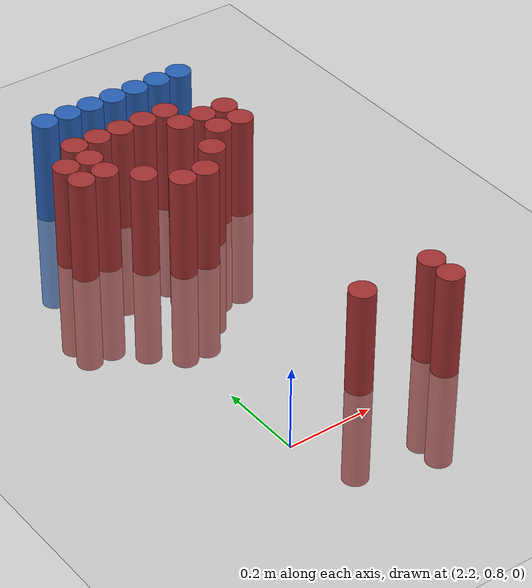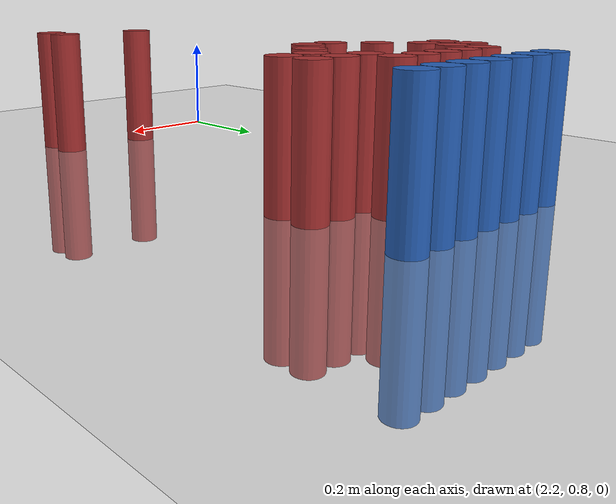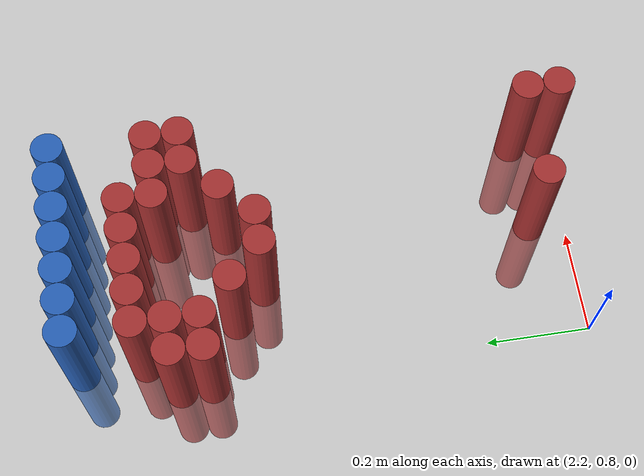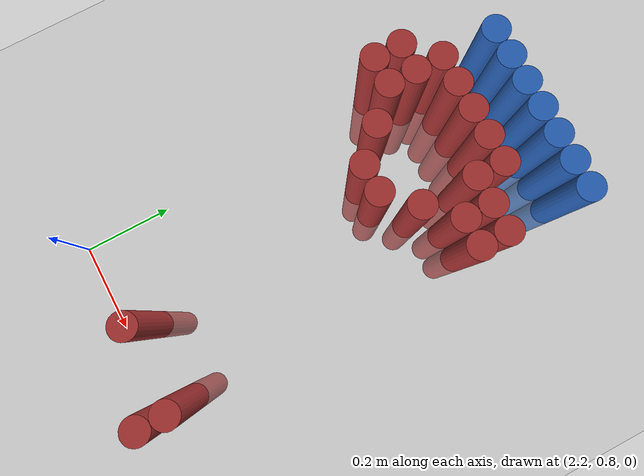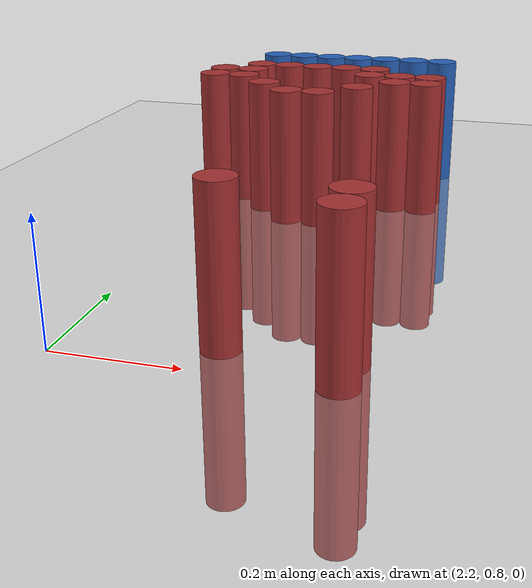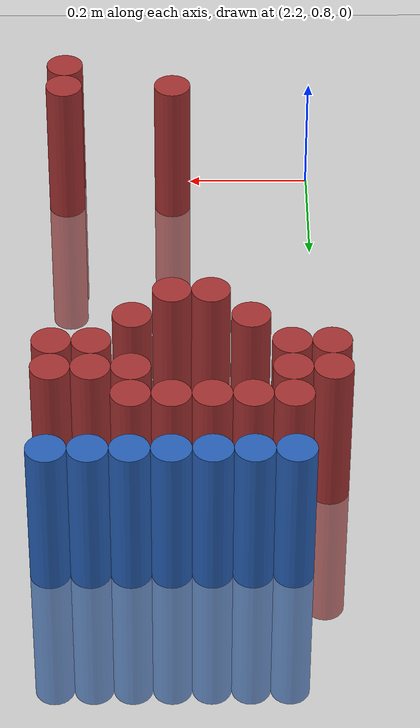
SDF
<sdf version="1.6">
 <world name="default">
  <model name="ground_plane">
   <static>1</static>
   <link name="link">
    <collision name="collision">
     <geometry><plane><normal>0 0 1</normal><size>100 100</size></plane></geometry>
     <surface><friction><ode><mu>100</mu><mu2>50</mu2></ode></friction></surface>
    </collision>
    <visual name="visual">
     <cast_shadows>0</cast_shadows>
     <geometry><plane><normal>0 0 1</normal><size>100 100</size></plane></geometry>
     <material>
      <script><uri>file://media/materials/scripts/gazebo.material</uri><name>Gazebo/Grey</name></script>
     </material>
    </visual>
   </link>
  </model>
  <model name="unit_cylinder_98">
   <static>1</static>
   <pose>2.250000 1.770000 0.000000 0.000000 0.000000 0.000000</pose>
   <link name="link">
    <inertial>
     <mass>1</mass>
     <inertia><ixx>0.145833</ixx><ixy>0</ixy><ixz>0</ixz><iyy>0.145833</iyy><iyz>0</iyz><izz>0.125</izz></inertia>
    </inertial>
    <collision name="collision">
     <geometry><cylinder><radius>0.030000</radius><length>0.5</length></cylinder></geometry>
    </collision>
    <visual name="visual">
     <geometry><cylinder><radius>0.030000</radius><length>0.5</length></cylinder></geometry>
     <material>
      <ambient>0.152000 0.379000 0.720000 1</ambient>
      <diffuse>0.152000 0.379000 0.720000 1</diffuse>
     </material>
     <material>
      <script><name>Gazebo/Grey</name><uri>file://media/materials/scripts/gazebo.material</uri></script>
     </material>
    </visual>
   </link>
  </model>
  <model name="unit_cylinder_99">
   <static>1</static>
   <pose>2.310000 1.770000 0.000000 0.000000 0.000000 0.000000</pose>
   <link name="link">
    <inertial>
     <mass>1</mass>
     <inertia><ixx>0.145833</ixx><ixy>0</ixy><ixz>0</ixz><iyy>0.145833</iyy><iyz>0</iyz><izz>0.125</izz></inertia>
    </inertial>
    <collision name="collision">
     <geometry><cylinder><radius>0.030000</radius><length>0.5</length></cylinder></geometry>
    </collision>
    <visual name="visual">
     <geometry><cylinder><radius>0.030000</radius><length>0.5</length></cylinder></geometry>
     <material>
      <ambient>0.152000 0.379000 0.720000 1</ambient>
      <diffuse>0.152000 0.379000 0.720000 1</diffuse>
     </material>
     <material>
      <script><name>Gazebo/Grey</name><uri>file://media/materials/scripts/gazebo.material</uri></script>
     </material>
    </visual>
   </link>
  </model>
  <model name="unit_cylinder_100">
   <static>1</static>
   <pose>2.370000 1.770000 0.000000 0.000000 0.000000 0.000000</pose>
   <link name="link">
    <inertial>
     <mass>1</mass>
     <inertia><ixx>0.145833</ixx><ixy>0</ixy><ixz>0</ixz><iyy>0.145833</iyy><iyz>0</iyz><izz>0.125</izz></inertia>
    </inertial>
    <collision name="collision">
     <geometry><cylinder><radius>0.030000</radius><length>0.5</length></cylinder></geometry>
    </collision>
    <visual name="visual">
     <geometry><cylinder><radius>0.030000</radius><length>0.5</length></cylinder></geometry>
     <material>
      <ambient>0.152000 0.379000 0.720000 1</ambient>
      <diffuse>0.152000 0.379000 0.720000 1</diffuse>
     </material>
     <material>
      <script><name>Gazebo/Grey</name><uri>file://media/materials/scripts/gazebo.material</uri></script>
     </material>
    </visual>
   </link>
  </model>
  <model name="unit_cylinder_101">
   <static>1</static>
   <pose>2.430000 1.770000 0.000000 0.000000 0.000000 0.000000</pose>
   <link name="link">
    <inertial>
     <mass>1</mass>
     <inertia><ixx>0.145833</ixx><ixy>0</ixy><ixz>0</ixz><iyy>0.145833</iyy><iyz>0</iyz><izz>0.125</izz></inertia>
    </inertial>
    <collision name="collision">
     <geometry><cylinder><radius>0.030000</radius><length>0.5</length></cylinder></geometry>
    </collision>
    <visual name="visual">
     <geometry><cylinder><radius>0.030000</radius><length>0.5</length></cylinder></geometry>
     <material>
      <ambient>0.152000 0.379000 0.720000 1</ambient>
      <diffuse>0.152000 0.379000 0.720000 1</diffuse>
     </material>
     <material>
      <script><name>Gazebo/Grey</name><uri>file://media/materials/scripts/gazebo.material</uri></script>
     </material>
    </visual>
   </link>
  </model>
  <model name="unit_cylinder_102">
   <static>1</static>
   <pose>2.490000 1.770000 0.000000 0.000000 0.000000 0.000000</pose>
   <link name="link">
    <inertial>
     <mass>1</mass>
     <inertia><ixx>0.145833</ixx><ixy>0</ixy><ixz>0</ixz><iyy>0.145833</iyy><iyz>0</iyz><izz>0.125</izz></inertia>
    </inertial>
    <collision name="collision">
     <geometry><cylinder><radius>0.030000</radius><length>0.5</length></cylinder></geometry>
    </collision>
    <visual name="visual">
     <geometry><cylinder><radius>0.030000</radius><length>0.5</length></cylinder></geometry>
     <material>
      <ambient>0.152000 0.379000 0.720000 1</ambient>
      <diffuse>0.152000 0.379000 0.720000 1</diffuse>
     </material>
     <material>
      <script><name>Gazebo/Grey</name><uri>file://media/materials/scripts/gazebo.material</uri></script>
     </material>
    </visual>
   </link>
  </model>
  <model name="unit_cylinder_103">
   <static>1</static>
   <pose>2.550000 1.770000 0.000000 0.000000 0.000000 0.000000</pose>
   <link name="link">
    <inertial>
     <mass>1</mass>
     <inertia><ixx>0.145833</ixx><ixy>0</ixy><ixz>0</ixz><iyy>0.145833</iyy><iyz>0</iyz><izz>0.125</izz></inertia>
    </inertial>
    <collision name="collision">
     <geometry><cylinder><radius>0.030000</radius><length>0.5</length></cylinder></geometry>
    </collision>
    <visual name="visual">
     <geometry><cylinder><radius>0.030000</radius><length>0.5</length></cylinder></geometry>
     <material>
      <ambient>0.152000 0.379000 0.720000 1</ambient>
      <diffuse>0.152000 0.379000 0.720000 1</diffuse>
     </material>
     <material>
      <script><name>Gazebo/Grey</name><uri>file://media/materials/scripts/gazebo.material</uri></script>
     </material>
    </visual>
   </link>
  </model>
  <model name="unit_cylinder_104">
   <static>1</static>
   <pose>2.610000 1.770000 0.000000 0.000000 0.000000 0.000000</pose>
   <link name="link">
    <inertial>
     <mass>1</mass>
     <inertia><ixx>0.145833</ixx><ixy>0</ixy><ixz>0</ixz><iyy>0.145833</iyy><iyz>0</iyz><izz>0.125</izz></inertia>
    </inertial>
    <collision name="collision">
     <geometry><cylinder><radius>0.030000</radius><length>0.5</length></cylinder></geometry>
    </collision>
    <visual name="visual">
     <geometry><cylinder><radius>0.030000</radius><length>0.5</length></cylinder></geometry>
     <material>
      <ambient>0.152000 0.379000 0.720000 1</ambient>
      <diffuse>0.152000 0.379000 0.720000 1</diffuse>
     </material>
     <material>
      <script><name>Gazebo/Grey</name><uri>file://media/materials/scripts/gazebo.material</uri></script>
     </material>
    </visual>
   </link>
  </model>
  <model name="unit_cylinder_137">
   <static>1</static>
   <pose>2.250000 1.650000 0.000000 0.000000 0.000000 0.000000</pose>
   <link name="link">
    <inertial>
     <mass>1</mass>
     <inertia><ixx>0.145833</ixx><ixy>0</ixy><ixz>0</ixz><iyy>0.145833</iyy><iyz>0</iyz><izz>0.125</izz></inertia>
    </inertial>
    <collision name="collision">
     <geometry><cylinder><radius>0.030000</radius><length>0.5</length></cylinder></geometry>
    </collision>
    <visual name="visual">
     <geometry><cylinder><radius>0.030000</radius><length>0.5</length></cylinder></geometry>
     <material>
      <ambient>0.648000 0.192000 0.192000 1</ambient>
      <diffuse>0.648000 0.192000 0.192000 1</diffuse>
     </material>
     <material>
      <script><name>Gazebo/Grey</name><uri>file://media/materials/scripts/gazebo.material</uri></script>
     </material>
    </visual>
   </link>
  </model>
  <model name="unit_cylinder_138">
   <static>1</static>
   <pose>2.310000 1.650000 0.000000 0.000000 0.000000 0.000000</pose>
   <link name="link">
    <inertial>
     <mass>1</mass>
     <inertia><ixx>0.145833</ixx><ixy>0</ixy><ixz>0</ixz><iyy>0.145833</iyy><iyz>0</iyz><izz>0.125</izz></inertia>
    </inertial>
    <collision name="collision">
     <geometry><cylinder><radius>0.030000</radius><length>0.5</length></cylinder></geometry>
    </collision>
    <visual name="visual">
     <geometry><cylinder><radius>0.030000</radius><length>0.5</length></cylinder></geometry>
     <material>
      <ambient>0.648000 0.192000 0.192000 1</ambient>
      <diffuse>0.648000 0.192000 0.192000 1</diffuse>
     </material>
     <material>
      <script><name>Gazebo/Grey</name><uri>file://media/materials/scripts/gazebo.material</uri></script>
     </material>
    </visual>
   </link>
  </model>
  <model name="unit_cylinder_139">
   <static>1</static>
   <pose>2.370000 1.650000 0.000000 0.000000 0.000000 0.000000</pose>
   <link name="link">
    <inertial>
     <mass>1</mass>
     <inertia><ixx>0.145833</ixx><ixy>0</ixy><ixz>0</ixz><iyy>0.145833</iyy><iyz>0</iyz><izz>0.125</izz></inertia>
    </inertial>
    <collision name="collision">
     <geometry><cylinder><radius>0.030000</radius><length>0.5</length></cylinder></geometry>
    </collision>
    <visual name="visual">
     <geometry><cylinder><radius>0.030000</radius><length>0.5</length></cylinder></geometry>
     <material>
      <ambient>0.648000 0.192000 0.192000 1</ambient>
      <diffuse>0.648000 0.192000 0.192000 1</diffuse>
     </material>
     <material>
      <script><name>Gazebo/Grey</name><uri>file://media/materials/scripts/gazebo.material</uri></script>
     </material>
    </visual>
   </link>
  </model>
  <model name="unit_cylinder_140">
   <static>1</static>
   <pose>2.430000 1.650000 0.000000 0.000000 0.000000 0.000000</pose>
   <link name="link">
    <inertial>
     <mass>1</mass>
     <inertia><ixx>0.145833</ixx><ixy>0</ixy><ixz>0</ixz><iyy>0.145833</iyy><iyz>0</iyz><izz>0.125</izz></inertia>
    </inertial>
    <collision name="collision">
     <geometry><cylinder><radius>0.030000</radius><length>0.5</length></cylinder></geometry>
    </collision>
    <visual name="visual">
     <geometry><cylinder><radius>0.030000</radius><length>0.5</length></cylinder></geometry>
     <material>
      <ambient>0.648000 0.192000 0.192000 1</ambient>
      <diffuse>0.648000 0.192000 0.192000 1</diffuse>
     </material>
     <material>
      <script><name>Gazebo/Grey</name><uri>file://media/materials/scripts/gazebo.material</uri></script>
     </material>
    </visual>
   </link>
  </model>
  <model name="unit_cylinder_141">
   <static>1</static>
   <pose>2.490000 1.650000 0.000000 0.000000 0.000000 0.000000</pose>
   <link name="link">
    <inertial>
     <mass>1</mass>
     <inertia><ixx>0.145833</ixx><ixy>0</ixy><ixz>0</ixz><iyy>0.145833</iyy><iyz>0</iyz><izz>0.125</izz></inertia>
    </inertial>
    <collision name="collision">
     <geometry><cylinder><radius>0.030000</radius><length>0.5</length></cylinder></geometry>
    </collision>
    <visual name="visual">
     <geometry><cylinder><radius>0.030000</radius><length>0.5</length></cylinder></geometry>
     <material>
      <ambient>0.648000 0.192000 0.192000 1</ambient>
      <diffuse>0.648000 0.192000 0.192000 1</diffuse>
     </material>
     <material>
      <script><name>Gazebo/Grey</name><uri>file://media/materials/scripts/gazebo.material</uri></script>
     </material>
    </visual>
   </link>
  </model>
  <model name="unit_cylinder_151">
   <static>1</static>
   <pose>2.190000 1.590000 0.000000 0.000000 0.000000 0.000000</pose>
   <link name="link">
    <inertial>
     <mass>1</mass>
     <inertia><ixx>0.145833</ixx><ixy>0</ixy><ixz>0</ixz><iyy>0.145833</iyy><iyz>0</iyz><izz>0.125</izz></inertia>
    </inertial>
    <collision name="collision">
     <geometry><cylinder><radius>0.030000</radius><length>0.5</length></cylinder></geometry>
    </collision>
    <visual name="visual">
     <geometry><cylinder><radius>0.030000</radius><length>0.5</length></cylinder></geometry>
     <material>
      <ambient>0.648000 0.192000 0.192000 1</ambient>
      <diffuse>0.648000 0.192000 0.192000 1</diffuse>
     </material>
     <material>
      <script><name>Gazebo/Grey</name><uri>file://media/materials/scripts/gazebo.material</uri></script>
     </material>
    </visual>
   </link>
  </model>
  <model name="unit_cylinder_152">
   <static>1</static>
   <pose>2.250000 1.590000 0.000000 0.000000 0.000000 0.000000</pose>
   <link name="link">
    <inertial>
     <mass>1</mass>
     <inertia><ixx>0.145833</ixx><ixy>0</ixy><ixz>0</ixz><iyy>0.145833</iyy><iyz>0</iyz><izz>0.125</izz></inertia>
    </inertial>
    <collision name="collision">
     <geometry><cylinder><radius>0.030000</radius><length>0.5</length></cylinder></geometry>
    </collision>
    <visual name="visual">
     <geometry><cylinder><radius>0.030000</radius><length>0.5</length></cylinder></geometry>
     <material>
      <ambient>0.648000 0.192000 0.192000 1</ambient>
      <diffuse>0.648000 0.192000 0.192000 1</diffuse>
     </material>
     <material>
      <script><name>Gazebo/Grey</name><uri>file://media/materials/scripts/gazebo.material</uri></script>
     </material>
    </visual>
   </link>
  </model>
  <model name="unit_cylinder_153">
   <static>1</static>
   <pose>2.490000 1.590000 0.000000 0.000000 0.000000 0.000000</pose>
   <link name="link">
    <inertial>
     <mass>1</mass>
     <inertia><ixx>0.145833</ixx><ixy>0</ixy><ixz>0</ixz><iyy>0.145833</iyy><iyz>0</iyz><izz>0.125</izz></inertia>
    </inertial>
    <collision name="collision">
     <geometry><cylinder><radius>0.030000</radius><length>0.5</length></cylinder></geometry>
    </collision>
    <visual name="visual">
     <geometry><cylinder><radius>0.030000</radius><length>0.5</length></cylinder></geometry>
     <material>
      <ambient>0.648000 0.192000 0.192000 1</ambient>
      <diffuse>0.648000 0.192000 0.192000 1</diffuse>
     </material>
     <material>
      <script><name>Gazebo/Grey</name><uri>file://media/materials/scripts/gazebo.material</uri></script>
     </material>
    </visual>
   </link>
  </model>
  <model name="unit_cylinder_154">
   <static>1</static>
   <pose>2.550000 1.590000 0.000000 0.000000 0.000000 0.000000</pose>
   <link name="link">
    <inertial>
     <mass>1</mass>
     <inertia><ixx>0.145833</ixx><ixy>0</ixy><ixz>0</ixz><iyy>0.145833</iyy><iyz>0</iyz><izz>0.125</izz></inertia>
    </inertial>
    <collision name="collision">
     <geometry><cylinder><radius>0.030000</radius><length>0.5</length></cylinder></geometry>
    </collision>
    <visual name="visual">
     <geometry><cylinder><radius>0.030000</radius><length>0.5</length></cylinder></geometry>
     <material>
      <ambient>0.648000 0.192000 0.192000 1</ambient>
      <diffuse>0.648000 0.192000 0.192000 1</diffuse>
     </material>
     <material>
      <script><name>Gazebo/Grey</name><uri>file://media/materials/scripts/gazebo.material</uri></script>
     </material>
    </visual>
   </link>
  </model>
  <model name="unit_cylinder_155">
   <static>1</static>
   <pose>2.610000 1.590000 0.000000 0.000000 0.000000 0.000000</pose>
   <link name="link">
    <inertial>
     <mass>1</mass>
     <inertia><ixx>0.145833</ixx><ixy>0</ixy><ixz>0</ixz><iyy>0.145833</iyy><iyz>0</iyz><izz>0.125</izz></inertia>
    </inertial>
    <collision name="collision">
     <geometry><cylinder><radius>0.030000</radius><length>0.5</length></cylinder></geometry>
    </collision>
    <visual name="visual">
     <geometry><cylinder><radius>0.030000</radius><length>0.5</length></cylinder></geometry>
     <material>
      <ambient>0.648000 0.192000 0.192000 1</ambient>
      <diffuse>0.648000 0.192000 0.192000 1</diffuse>
     </material>
     <material>
      <script><name>Gazebo/Grey</name><uri>file://media/materials/scripts/gazebo.material</uri></script>
     </material>
    </visual>
   </link>
  </model>
  <model name="unit_cylinder_160">
   <static>1</static>
   <pose>2.190000 1.530000 0.000000 0.000000 0.000000 0.000000</pose>
   <link name="link">
    <inertial>
     <mass>1</mass>
     <inertia><ixx>0.145833</ixx><ixy>0</ixy><ixz>0</ixz><iyy>0.145833</iyy><iyz>0</iyz><izz>0.125</izz></inertia>
    </inertial>
    <collision name="collision">
     <geometry><cylinder><radius>0.030000</radius><length>0.5</length></cylinder></geometry>
    </collision>
    <visual name="visual">
     <geometry><cylinder><radius>0.030000</radius><length>0.5</length></cylinder></geometry>
     <material>
      <ambient>0.648000 0.192000 0.192000 1</ambient>
      <diffuse>0.648000 0.192000 0.192000 1</diffuse>
     </material>
     <material>
      <script><name>Gazebo/Grey</name><uri>file://media/materials/scripts/gazebo.material</uri></script>
     </material>
    </visual>
   </link>
  </model>
  <model name="unit_cylinder_161">
   <static>1</static>
   <pose>2.250000 1.530000 0.000000 0.000000 0.000000 0.000000</pose>
   <link name="link">
    <inertial>
     <mass>1</mass>
     <inertia><ixx>0.145833</ixx><ixy>0</ixy><ixz>0</ixz><iyy>0.145833</iyy><iyz>0</iyz><izz>0.125</izz></inertia>
    </inertial>
    <collision name="collision">
     <geometry><cylinder><radius>0.030000</radius><length>0.5</length></cylinder></geometry>
    </collision>
    <visual name="visual">
     <geometry><cylinder><radius>0.030000</radius><length>0.5</length></cylinder></geometry>
     <material>
      <ambient>0.648000 0.192000 0.192000 1</ambient>
      <diffuse>0.648000 0.192000 0.192000 1</diffuse>
     </material>
     <material>
      <script><name>Gazebo/Grey</name><uri>file://media/materials/scripts/gazebo.material</uri></script>
     </material>
    </visual>
   </link>
  </model>
  <model name="unit_cylinder_162">
   <static>1</static>
   <pose>2.550000 1.530000 0.000000 0.000000 0.000000 0.000000</pose>
   <link name="link">
    <inertial>
     <mass>1</mass>
     <inertia><ixx>0.145833</ixx><ixy>0</ixy><ixz>0</ixz><iyy>0.145833</iyy><iyz>0</iyz><izz>0.125</izz></inertia>
    </inertial>
    <collision name="collision">
     <geometry><cylinder><radius>0.030000</radius><length>0.5</length></cylinder></geometry>
    </collision>
    <visual name="visual">
     <geometry><cylinder><radius>0.030000</radius><length>0.5</length></cylinder></geometry>
     <material>
      <ambient>0.648000 0.192000 0.192000 1</ambient>
      <diffuse>0.648000 0.192000 0.192000 1</diffuse>
     </material>
     <material>
      <script><name>Gazebo/Grey</name><uri>file://media/materials/scripts/gazebo.material</uri></script>
     </material>
    </visual>
   </link>
  </model>
  <model name="unit_cylinder_163">
   <static>1</static>
   <pose>2.610000 1.530000 0.000000 0.000000 0.000000 0.000000</pose>
   <link name="link">
    <inertial>
     <mass>1</mass>
     <inertia><ixx>0.145833</ixx><ixy>0</ixy><ixz>0</ixz><iyy>0.145833</iyy><iyz>0</iyz><izz>0.125</izz></inertia>
    </inertial>
    <collision name="collision">
     <geometry><cylinder><radius>0.030000</radius><length>0.5</length></cylinder></geometry>
    </collision>
    <visual name="visual">
     <geometry><cylinder><radius>0.030000</radius><length>0.5</length></cylinder></geometry>
     <material>
      <ambient>0.648000 0.192000 0.192000 1</ambient>
      <diffuse>0.648000 0.192000 0.192000 1</diffuse>
     </material>
     <material>
      <script><name>Gazebo/Grey</name><uri>file://media/materials/scripts/gazebo.material</uri></script>
     </material>
    </visual>
   </link>
  </model>
  <model name="unit_cylinder_167">
   <static>1</static>
   <pose>2.310000 1.470000 0.000000 0.000000 0.000000 0.000000</pose>
   <link name="link">
    <inertial>
     <mass>1</mass>
     <inertia><ixx>0.145833</ixx><ixy>0</ixy><ixz>0</ixz><iyy>0.145833</iyy><iyz>0</iyz><izz>0.125</izz></inertia>
    </inertial>
    <collision name="collision">
     <geometry><cylinder><radius>0.030000</radius><length>0.5</length></cylinder></geometry>
    </collision>
    <visual name="visual">
     <geometry><cylinder><radius>0.030000</radius><length>0.5</length></cylinder></geometry>
     <material>
      <ambient>0.648000 0.192000 0.192000 1</ambient>
      <diffuse>0.648000 0.192000 0.192000 1</diffuse>
     </material>
     <material>
      <script><name>Gazebo/Grey</name><uri>file://media/materials/scripts/gazebo.material</uri></script>
     </material>
    </visual>
   </link>
  </model>
  <model name="unit_cylinder_168">
   <static>1</static>
   <pose>2.490000 1.470000 0.000000 0.000000 0.000000 0.000000</pose>
   <link name="link">
    <inertial>
     <mass>1</mass>
     <inertia><ixx>0.145833</ixx><ixy>0</ixy><ixz>0</ixz><iyy>0.145833</iyy><iyz>0</iyz><izz>0.125</izz></inertia>
    </inertial>
    <collision name="collision">
     <geometry><cylinder><radius>0.030000</radius><length>0.5</length></cylinder></geometry>
    </collision>
    <visual name="visual">
     <geometry><cylinder><radius>0.030000</radius><length>0.5</length></cylinder></geometry>
     <material>
      <ambient>0.648000 0.192000 0.192000 1</ambient>
      <diffuse>0.648000 0.192000 0.192000 1</diffuse>
     </material>
     <material>
      <script><name>Gazebo/Grey</name><uri>file://media/materials/scripts/gazebo.material</uri></script>
     </material>
    </visual>
   </link>
  </model>
  <model name="unit_cylinder_173">
   <static>1</static>
   <pose>2.370000 1.410000 0.000000 0.000000 0.000000 0.000000</pose>
   <link name="link">
    <inertial>
     <mass>1</mass>
     <inertia><ixx>0.145833</ixx><ixy>0</ixy><ixz>0</ixz><iyy>0.145833</iyy><iyz>0</iyz><izz>0.125</izz></inertia>
    </inertial>
    <collision name="collision">
     <geometry><cylinder><radius>0.030000</radius><length>0.5</length></cylinder></geometry>
    </collision>
    <visual name="visual">
     <geometry><cylinder><radius>0.030000</radius><length>0.5</length></cylinder></geometry>
     <material>
      <ambient>0.648000 0.192000 0.192000 1</ambient>
      <diffuse>0.648000 0.192000 0.192000 1</diffuse>
     </material>
     <material>
      <script><name>Gazebo/Grey</name><uri>file://media/materials/scripts/gazebo.material</uri></script>
     </material>
    </visual>
   </link>
  </model>
  <model name="unit_cylinder_174">
   <static>1</static>
   <pose>2.430000 1.410000 0.000000 0.000000 0.000000 0.000000</pose>
   <link name="link">
    <inertial>
     <mass>1</mass>
     <inertia><ixx>0.145833</ixx><ixy>0</ixy><ixz>0</ixz><iyy>0.145833</iyy><iyz>0</iyz><izz>0.125</izz></inertia>
    </inertial>
    <collision name="collision">
     <geometry><cylinder><radius>0.030000</radius><length>0.5</length></cylinder></geometry>
    </collision>
    <visual name="visual">
     <geometry><cylinder><radius>0.030000</radius><length>0.5</length></cylinder></geometry>
     <material>
      <ambient>0.648000 0.192000 0.192000 1</ambient>
      <diffuse>0.648000 0.192000 0.192000 1</diffuse>
     </material>
     <material>
      <script><name>Gazebo/Grey</name><uri>file://media/materials/scripts/gazebo.material</uri></script>
     </material>
    </visual>
   </link>
  </model>
  <model name="unit_cylinder_193">
   <static>1</static>
   <pose>2.430000 0.870000 0.000000 0.000000 0.000000 0.000000</pose>
   <link name="link">
    <inertial>
     <mass>1</mass>
     <inertia><ixx>0.145833</ixx><ixy>0</ixy><ixz>0</ixz><iyy>0.145833</iyy><iyz>0</iyz><izz>0.125</izz></inertia>
    </inertial>
    <collision name="collision">
     <geometry><cylinder><radius>0.030000</radius><length>0.5</length></cylinder></geometry>
    </collision>
    <visual name="visual">
     <geometry><cylinder><radius>0.030000</radius><length>0.5</length></cylinder></geometry>
     <material>
      <ambient>0.648000 0.192000 0.192000 1</ambient>
      <diffuse>0.648000 0.192000 0.192000 1</diffuse>
     </material>
     <material>
      <script><name>Gazebo/Grey</name><uri>file://media/materials/scripts/gazebo.material</uri></script>
     </material>
    </visual>
   </link>
  </model>
  <model name="unit_cylinder_194">
   <static>1</static>
   <pose>2.610000 0.870000 0.000000 0.000000 0.000000 0.000000</pose>
   <link name="link">
    <inertial>
     <mass>1</mass>
     <inertia><ixx>0.145833</ixx><ixy>0</ixy><ixz>0</ixz><iyy>0.145833</iyy><iyz>0</iyz><izz>0.125</izz></inertia>
    </inertial>
    <collision name="collision">
     <geometry><cylinder><radius>0.030000</radius><length>0.5</length></cylinder></geometry>
    </collision>
    <visual name="visual">
     <geometry><cylinder><radius>0.030000</radius><length>0.5</length></cylinder></geometry>
     <material>
      <ambient>0.648000 0.192000 0.192000 1</ambient>
      <diffuse>0.648000 0.192000 0.192000 1</diffuse>
     </material>
     <material>
      <script><name>Gazebo/Grey</name><uri>file://media/materials/scripts/gazebo.material</uri></script>
     </material>
    </visual>
   </link>
  </model>
  <model name="unit_cylinder_203">
   <static>1</static>
   <pose>2.610000 0.810000 0.000000 0.000000 0.000000 0.000000</pose>
   <link name="link">
    <inertial>
     <mass>1</mass>
     <inertia><ixx>0.145833</ixx><ixy>0</ixy><ixz>0</ixz><iyy>0.145833</iyy><iyz>0</iyz><izz>0.125</izz></inertia>
    </inertial>
    <collision name="collision">
     <geometry><cylinder><radius>0.030000</radius><length>0.5</length></cylinder></geometry>
    </collision>
    <visual name="visual">
     <geometry><cylinder><radius>0.030000</radius><length>0.5</length></cylinder></geometry>
     <material>
      <ambient>0.648000 0.192000 0.192000 1</ambient>
      <diffuse>0.648000 0.192000 0.192000 1</diffuse>
     </material>
     <material>
      <script><name>Gazebo/Grey</name><uri>file://media/materials/scripts/gazebo.material</uri></script>
     </material>
    </visual>
   </link>
  </model>
 </world>
</sdf>
